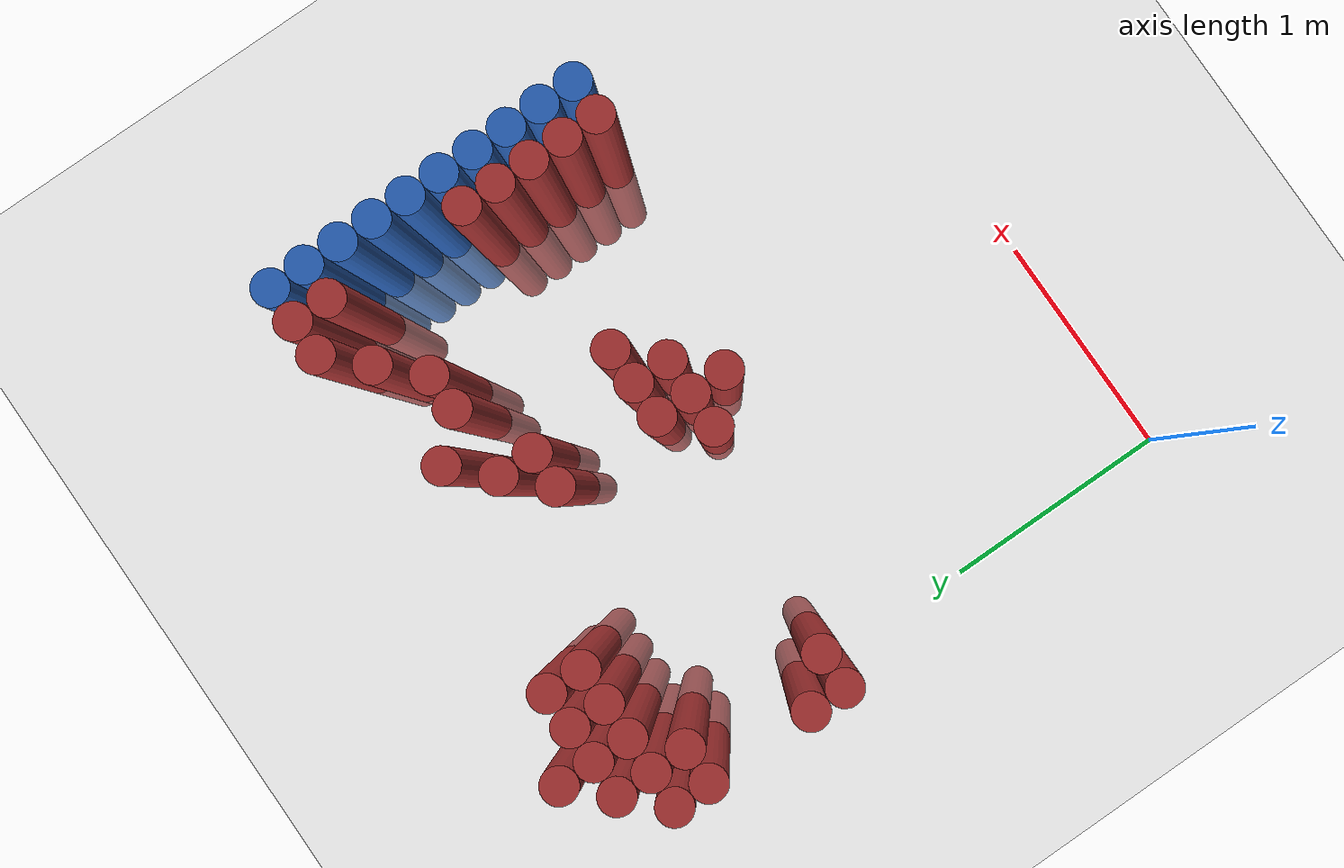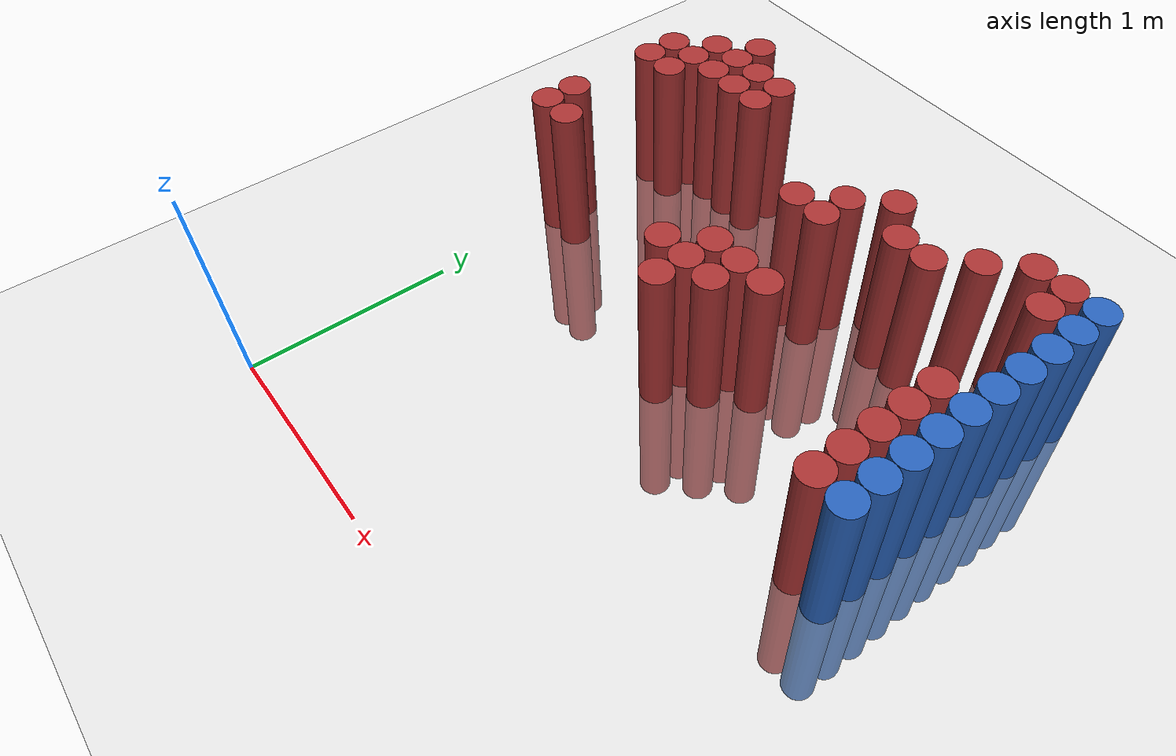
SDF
<sdf version="1.6">
 <world name="default">
  <model name="ground_plane">
   <static>1</static>
   <link name="link">
    <collision name="collision">
     <geometry><plane><normal>0 0 1</normal><size>100 100</size></plane></geometry>
     <surface><friction><ode><mu>100</mu><mu2>50</mu2></ode></friction></surface>
    </collision>
    <visual name="visual">
     <cast_shadows>0</cast_shadows>
     <geometry><plane><normal>0 0 1</normal><size>100 100</size></plane></geometry>
     <material>
      <script><uri>file://media/materials/scripts/gazebo.material</uri><name>Gazebo/Grey</name></script>
     </material>
    </visual>
   </link>
  </model>
  <model name="unit_cylinder_169">
   <static>1</static>
   <pose>0.025000 1.675000 0.000000 0.000000 0.000000 0.000000</pose>
   <link name="link">
    <inertial>
     <mass>1</mass>
     <inertia><ixx>0.145833</ixx><ixy>0</ixy><ixz>0</ixz><iyy>0.145833</iyy><iyz>0</iyz><izz>0.125</izz></inertia>
    </inertial>
    <collision name="collision">
     <geometry><cylinder><radius>0.075000</radius><length>1.5</length></cylinder></geometry>
    </collision>
    <visual name="visual">
     <geometry><cylinder><radius>0.075000</radius><length>1.5</length></cylinder></geometry>
     <material>
      <ambient>0.648000 0.192000 0.192000 1</ambient>
      <diffuse>0.648000 0.192000 0.192000 1</diffuse>
     </material>
     <material>
      <script><name>Gazebo/Grey</name><uri>file://media/materials/scripts/gazebo.material</uri></script>
     </material>
    </visual>
   </link>
  </model>
  <model name="unit_cylinder_170">
   <static>1</static>
   <pose>0.025000 1.825000 0.000000 0.000000 0.000000 0.000000</pose>
   <link name="link">
    <inertial>
     <mass>1</mass>
     <inertia><ixx>0.145833</ixx><ixy>0</ixy><ixz>0</ixz><iyy>0.145833</iyy><iyz>0</iyz><izz>0.125</izz></inertia>
    </inertial>
    <collision name="collision">
     <geometry><cylinder><radius>0.075000</radius><length>1.5</length></cylinder></geometry>
    </collision>
    <visual name="visual">
     <geometry><cylinder><radius>0.075000</radius><length>1.5</length></cylinder></geometry>
     <material>
      <ambient>0.648000 0.192000 0.192000 1</ambient>
      <diffuse>0.648000 0.192000 0.192000 1</diffuse>
     </material>
     <material>
      <script><name>Gazebo/Grey</name><uri>file://media/materials/scripts/gazebo.material</uri></script>
     </material>
    </visual>
   </link>
  </model>
  <model name="unit_cylinder_171">
   <static>1</static>
   <pose>0.025000 2.275000 0.000000 0.000000 0.000000 0.000000</pose>
   <link name="link">
    <inertial>
     <mass>1</mass>
     <inertia><ixx>0.145833</ixx><ixy>0</ixy><ixz>0</ixz><iyy>0.145833</iyy><iyz>0</iyz><izz>0.125</izz></inertia>
    </inertial>
    <collision name="collision">
     <geometry><cylinder><radius>0.075000</radius><length>1.5</length></cylinder></geometry>
    </collision>
    <visual name="visual">
     <geometry><cylinder><radius>0.075000</radius><length>1.5</length></cylinder></geometry>
     <material>
      <ambient>0.648000 0.192000 0.192000 1</ambient>
      <diffuse>0.648000 0.192000 0.192000 1</diffuse>
     </material>
     <material>
      <script><name>Gazebo/Grey</name><uri>file://media/materials/scripts/gazebo.material</uri></script>
     </material>
    </visual>
   </link>
  </model>
  <model name="unit_cylinder_172">
   <static>1</static>
   <pose>0.025000 2.425000 0.000000 0.000000 0.000000 0.000000</pose>
   <link name="link">
    <inertial>
     <mass>1</mass>
     <inertia><ixx>0.145833</ixx><ixy>0</ixy><ixz>0</ixz><iyy>0.145833</iyy><iyz>0</iyz><izz>0.125</izz></inertia>
    </inertial>
    <collision name="collision">
     <geometry><cylinder><radius>0.075000</radius><length>1.5</length></cylinder></geometry>
    </collision>
    <visual name="visual">
     <geometry><cylinder><radius>0.075000</radius><length>1.5</length></cylinder></geometry>
     <material>
      <ambient>0.648000 0.192000 0.192000 1</ambient>
      <diffuse>0.648000 0.192000 0.192000 1</diffuse>
     </material>
     <material>
      <script><name>Gazebo/Grey</name><uri>file://media/materials/scripts/gazebo.material</uri></script>
     </material>
    </visual>
   </link>
  </model>
  <model name="unit_cylinder_174">
   <static>1</static>
   <pose>0.175000 1.675000 0.000000 0.000000 0.000000 0.000000</pose>
   <link name="link">
    <inertial>
     <mass>1</mass>
     <inertia><ixx>0.145833</ixx><ixy>0</ixy><ixz>0</ixz><iyy>0.145833</iyy><iyz>0</iyz><izz>0.125</izz></inertia>
    </inertial>
    <collision name="collision">
     <geometry><cylinder><radius>0.075000</radius><length>1.5</length></cylinder></geometry>
    </collision>
    <visual name="visual">
     <geometry><cylinder><radius>0.075000</radius><length>1.5</length></cylinder></geometry>
     <material>
      <ambient>0.648000 0.192000 0.192000 1</ambient>
      <diffuse>0.648000 0.192000 0.192000 1</diffuse>
     </material>
     <material>
      <script><name>Gazebo/Grey</name><uri>file://media/materials/scripts/gazebo.material</uri></script>
     </material>
    </visual>
   </link>
  </model>
  <model name="unit_cylinder_175">
   <static>1</static>
   <pose>0.175000 2.275000 0.000000 0.000000 0.000000 0.000000</pose>
   <link name="link">
    <inertial>
     <mass>1</mass>
     <inertia><ixx>0.145833</ixx><ixy>0</ixy><ixz>0</ixz><iyy>0.145833</iyy><iyz>0</iyz><izz>0.125</izz></inertia>
    </inertial>
    <collision name="collision">
     <geometry><cylinder><radius>0.075000</radius><length>1.5</length></cylinder></geometry>
    </collision>
    <visual name="visual">
     <geometry><cylinder><radius>0.075000</radius><length>1.5</length></cylinder></geometry>
     <material>
      <ambient>0.648000 0.192000 0.192000 1</ambient>
      <diffuse>0.648000 0.192000 0.192000 1</diffuse>
     </material>
     <material>
      <script><name>Gazebo/Grey</name><uri>file://media/materials/scripts/gazebo.material</uri></script>
     </material>
    </visual>
   </link>
  </model>
  <model name="unit_cylinder_176">
   <static>1</static>
   <pose>0.175000 2.425000 0.000000 0.000000 0.000000 0.000000</pose>
   <link name="link">
    <inertial>
     <mass>1</mass>
     <inertia><ixx>0.145833</ixx><ixy>0</ixy><ixz>0</ixz><iyy>0.145833</iyy><iyz>0</iyz><izz>0.125</izz></inertia>
    </inertial>
    <collision name="collision">
     <geometry><cylinder><radius>0.075000</radius><length>1.5</length></cylinder></geometry>
    </collision>
    <visual name="visual">
     <geometry><cylinder><radius>0.075000</radius><length>1.5</length></cylinder></geometry>
     <material>
      <ambient>0.648000 0.192000 0.192000 1</ambient>
      <diffuse>0.648000 0.192000 0.192000 1</diffuse>
     </material>
     <material>
      <script><name>Gazebo/Grey</name><uri>file://media/materials/scripts/gazebo.material</uri></script>
     </material>
    </visual>
   </link>
  </model>
  <model name="unit_cylinder_177">
   <static>1</static>
   <pose>0.175000 2.575000 0.000000 0.000000 0.000000 0.000000</pose>
   <link name="link">
    <inertial>
     <mass>1</mass>
     <inertia><ixx>0.145833</ixx><ixy>0</ixy><ixz>0</ixz><iyy>0.145833</iyy><iyz>0</iyz><izz>0.125</izz></inertia>
    </inertial>
    <collision name="collision">
     <geometry><cylinder><radius>0.075000</radius><length>1.5</length></cylinder></geometry>
    </collision>
    <visual name="visual">
     <geometry><cylinder><radius>0.075000</radius><length>1.5</length></cylinder></geometry>
     <material>
      <ambient>0.648000 0.192000 0.192000 1</ambient>
      <diffuse>0.648000 0.192000 0.192000 1</diffuse>
     </material>
     <material>
      <script><name>Gazebo/Grey</name><uri>file://media/materials/scripts/gazebo.material</uri></script>
     </material>
    </visual>
   </link>
  </model>
  <model name="unit_cylinder_178">
   <static>1</static>
   <pose>0.325000 2.425000 0.000000 0.000000 0.000000 0.000000</pose>
   <link name="link">
    <inertial>
     <mass>1</mass>
     <inertia><ixx>0.145833</ixx><ixy>0</ixy><ixz>0</ixz><iyy>0.145833</iyy><iyz>0</iyz><izz>0.125</izz></inertia>
    </inertial>
    <collision name="collision">
     <geometry><cylinder><radius>0.075000</radius><length>1.5</length></cylinder></geometry>
    </collision>
    <visual name="visual">
     <geometry><cylinder><radius>0.075000</radius><length>1.5</length></cylinder></geometry>
     <material>
      <ambient>0.648000 0.192000 0.192000 1</ambient>
      <diffuse>0.648000 0.192000 0.192000 1</diffuse>
     </material>
     <material>
      <script><name>Gazebo/Grey</name><uri>file://media/materials/scripts/gazebo.material</uri></script>
     </material>
    </visual>
   </link>
  </model>
  <model name="unit_cylinder_179">
   <static>1</static>
   <pose>0.325000 2.575000 0.000000 0.000000 0.000000 0.000000</pose>
   <link name="link">
    <inertial>
     <mass>1</mass>
     <inertia><ixx>0.145833</ixx><ixy>0</ixy><ixz>0</ixz><iyy>0.145833</iyy><iyz>0</iyz><izz>0.125</izz></inertia>
    </inertial>
    <collision name="collision">
     <geometry><cylinder><radius>0.075000</radius><length>1.5</length></cylinder></geometry>
    </collision>
    <visual name="visual">
     <geometry><cylinder><radius>0.075000</radius><length>1.5</length></cylinder></geometry>
     <material>
      <ambient>0.648000 0.192000 0.192000 1</ambient>
      <diffuse>0.648000 0.192000 0.192000 1</diffuse>
     </material>
     <material>
      <script><name>Gazebo/Grey</name><uri>file://media/materials/scripts/gazebo.material</uri></script>
     </material>
    </visual>
   </link>
  </model>
  <model name="unit_cylinder_180">
   <static>1</static>
   <pose>0.325000 2.725000 0.000000 0.000000 0.000000 0.000000</pose>
   <link name="link">
    <inertial>
     <mass>1</mass>
     <inertia><ixx>0.145833</ixx><ixy>0</ixy><ixz>0</ixz><iyy>0.145833</iyy><iyz>0</iyz><izz>0.125</izz></inertia>
    </inertial>
    <collision name="collision">
     <geometry><cylinder><radius>0.075000</radius><length>1.5</length></cylinder></geometry>
    </collision>
    <visual name="visual">
     <geometry><cylinder><radius>0.075000</radius><length>1.5</length></cylinder></geometry>
     <material>
      <ambient>0.648000 0.192000 0.192000 1</ambient>
      <diffuse>0.648000 0.192000 0.192000 1</diffuse>
     </material>
     <material>
      <script><name>Gazebo/Grey</name><uri>file://media/materials/scripts/gazebo.material</uri></script>
     </material>
    </visual>
   </link>
  </model>
  <model name="unit_cylinder_182">
   <static>1</static>
   <pose>0.475000 2.425000 0.000000 0.000000 0.000000 0.000000</pose>
   <link name="link">
    <inertial>
     <mass>1</mass>
     <inertia><ixx>0.145833</ixx><ixy>0</ixy><ixz>0</ixz><iyy>0.145833</iyy><iyz>0</iyz><izz>0.125</izz></inertia>
    </inertial>
    <collision name="collision">
     <geometry><cylinder><radius>0.075000</radius><length>1.5</length></cylinder></geometry>
    </collision>
    <visual name="visual">
     <geometry><cylinder><radius>0.075000</radius><length>1.5</length></cylinder></geometry>
     <material>
      <ambient>0.648000 0.192000 0.192000 1</ambient>
      <diffuse>0.648000 0.192000 0.192000 1</diffuse>
     </material>
     <material>
      <script><name>Gazebo/Grey</name><uri>file://media/materials/scripts/gazebo.material</uri></script>
     </material>
    </visual>
   </link>
  </model>
  <model name="unit_cylinder_183">
   <static>1</static>
   <pose>0.475000 2.575000 0.000000 0.000000 0.000000 0.000000</pose>
   <link name="link">
    <inertial>
     <mass>1</mass>
     <inertia><ixx>0.145833</ixx><ixy>0</ixy><ixz>0</ixz><iyy>0.145833</iyy><iyz>0</iyz><izz>0.125</izz></inertia>
    </inertial>
    <collision name="collision">
     <geometry><cylinder><radius>0.075000</radius><length>1.5</length></cylinder></geometry>
    </collision>
    <visual name="visual">
     <geometry><cylinder><radius>0.075000</radius><length>1.5</length></cylinder></geometry>
     <material>
      <ambient>0.648000 0.192000 0.192000 1</ambient>
      <diffuse>0.648000 0.192000 0.192000 1</diffuse>
     </material>
     <material>
      <script><name>Gazebo/Grey</name><uri>file://media/materials/scripts/gazebo.material</uri></script>
     </material>
    </visual>
   </link>
  </model>
  <model name="unit_cylinder_185">
   <static>1</static>
   <pose>0.625000 2.425000 0.000000 0.000000 0.000000 0.000000</pose>
   <link name="link">
    <inertial>
     <mass>1</mass>
     <inertia><ixx>0.145833</ixx><ixy>0</ixy><ixz>0</ixz><iyy>0.145833</iyy><iyz>0</iyz><izz>0.125</izz></inertia>
    </inertial>
    <collision name="collision">
     <geometry><cylinder><radius>0.075000</radius><length>1.5</length></cylinder></geometry>
    </collision>
    <visual name="visual">
     <geometry><cylinder><radius>0.075000</radius><length>1.5</length></cylinder></geometry>
     <material>
      <ambient>0.648000 0.192000 0.192000 1</ambient>
      <diffuse>0.648000 0.192000 0.192000 1</diffuse>
     </material>
     <material>
      <script><name>Gazebo/Grey</name><uri>file://media/materials/scripts/gazebo.material</uri></script>
     </material>
    </visual>
   </link>
  </model>
  <model name="unit_cylinder_186">
   <static>1</static>
   <pose>0.625000 2.575000 0.000000 0.000000 0.000000 0.000000</pose>
   <link name="link">
    <inertial>
     <mass>1</mass>
     <inertia><ixx>0.145833</ixx><ixy>0</ixy><ixz>0</ixz><iyy>0.145833</iyy><iyz>0</iyz><izz>0.125</izz></inertia>
    </inertial>
    <collision name="collision">
     <geometry><cylinder><radius>0.075000</radius><length>1.5</length></cylinder></geometry>
    </collision>
    <visual name="visual">
     <geometry><cylinder><radius>0.075000</radius><length>1.5</length></cylinder></geometry>
     <material>
      <ambient>0.648000 0.192000 0.192000 1</ambient>
      <diffuse>0.648000 0.192000 0.192000 1</diffuse>
     </material>
     <material>
      <script><name>Gazebo/Grey</name><uri>file://media/materials/scripts/gazebo.material</uri></script>
     </material>
    </visual>
   </link>
  </model>
  <model name="unit_cylinder_190">
   <static>1</static>
   <pose>1.075000 1.525000 0.000000 0.000000 0.000000 0.000000</pose>
   <link name="link">
    <inertial>
     <mass>1</mass>
     <inertia><ixx>0.145833</ixx><ixy>0</ixy><ixz>0</ixz><iyy>0.145833</iyy><iyz>0</iyz><izz>0.125</izz></inertia>
    </inertial>
    <collision name="collision">
     <geometry><cylinder><radius>0.075000</radius><length>1.5</length></cylinder></geometry>
    </collision>
    <visual name="visual">
     <geometry><cylinder><radius>0.075000</radius><length>1.5</length></cylinder></geometry>
     <material>
      <ambient>0.648000 0.192000 0.192000 1</ambient>
      <diffuse>0.648000 0.192000 0.192000 1</diffuse>
     </material>
     <material>
      <script><name>Gazebo/Grey</name><uri>file://media/materials/scripts/gazebo.material</uri></script>
     </material>
    </visual>
   </link>
  </model>
  <model name="unit_cylinder_195">
   <static>1</static>
   <pose>1.225000 1.375000 0.000000 0.000000 0.000000 0.000000</pose>
   <link name="link">
    <inertial>
     <mass>1</mass>
     <inertia><ixx>0.145833</ixx><ixy>0</ixy><ixz>0</ixz><iyy>0.145833</iyy><iyz>0</iyz><izz>0.125</izz></inertia>
    </inertial>
    <collision name="collision">
     <geometry><cylinder><radius>0.075000</radius><length>1.5</length></cylinder></geometry>
    </collision>
    <visual name="visual">
     <geometry><cylinder><radius>0.075000</radius><length>1.5</length></cylinder></geometry>
     <material>
      <ambient>0.648000 0.192000 0.192000 1</ambient>
      <diffuse>0.648000 0.192000 0.192000 1</diffuse>
     </material>
     <material>
      <script><name>Gazebo/Grey</name><uri>file://media/materials/scripts/gazebo.material</uri></script>
     </material>
    </visual>
   </link>
  </model>
  <model name="unit_cylinder_196">
   <static>1</static>
   <pose>1.225000 1.525000 0.000000 0.000000 0.000000 0.000000</pose>
   <link name="link">
    <inertial>
     <mass>1</mass>
     <inertia><ixx>0.145833</ixx><ixy>0</ixy><ixz>0</ixz><iyy>0.145833</iyy><iyz>0</iyz><izz>0.125</izz></inertia>
    </inertial>
    <collision name="collision">
     <geometry><cylinder><radius>0.075000</radius><length>1.5</length></cylinder></geometry>
    </collision>
    <visual name="visual">
     <geometry><cylinder><radius>0.075000</radius><length>1.5</length></cylinder></geometry>
     <material>
      <ambient>0.648000 0.192000 0.192000 1</ambient>
      <diffuse>0.648000 0.192000 0.192000 1</diffuse>
     </material>
     <material>
      <script><name>Gazebo/Grey</name><uri>file://media/materials/scripts/gazebo.material</uri></script>
     </material>
    </visual>
   </link>
  </model>
  <model name="unit_cylinder_197">
   <static>1</static>
   <pose>1.225000 1.675000 0.000000 0.000000 0.000000 0.000000</pose>
   <link name="link">
    <inertial>
     <mass>1</mass>
     <inertia><ixx>0.145833</ixx><ixy>0</ixy><ixz>0</ixz><iyy>0.145833</iyy><iyz>0</iyz><izz>0.125</izz></inertia>
    </inertial>
    <collision name="collision">
     <geometry><cylinder><radius>0.075000</radius><length>1.5</length></cylinder></geometry>
    </collision>
    <visual name="visual">
     <geometry><cylinder><radius>0.075000</radius><length>1.5</length></cylinder></geometry>
     <material>
      <ambient>0.648000 0.192000 0.192000 1</ambient>
      <diffuse>0.648000 0.192000 0.192000 1</diffuse>
     </material>
     <material>
      <script><name>Gazebo/Grey</name><uri>file://media/materials/scripts/gazebo.material</uri></script>
     </material>
    </visual>
   </link>
  </model>
  <model name="unit_cylinder_198">
   <static>1</static>
   <pose>1.225000 2.125000 0.000000 0.000000 0.000000 0.000000</pose>
   <link name="link">
    <inertial>
     <mass>1</mass>
     <inertia><ixx>0.145833</ixx><ixy>0</ixy><ixz>0</ixz><iyy>0.145833</iyy><iyz>0</iyz><izz>0.125</izz></inertia>
    </inertial>
    <collision name="collision">
     <geometry><cylinder><radius>0.075000</radius><length>1.5</length></cylinder></geometry>
    </collision>
    <visual name="visual">
     <geometry><cylinder><radius>0.075000</radius><length>1.5</length></cylinder></geometry>
     <material>
      <ambient>0.648000 0.192000 0.192000 1</ambient>
      <diffuse>0.648000 0.192000 0.192000 1</diffuse>
     </material>
     <material>
      <script><name>Gazebo/Grey</name><uri>file://media/materials/scripts/gazebo.material</uri></script>
     </material>
    </visual>
   </link>
  </model>
  <model name="unit_cylinder_204">
   <static>1</static>
   <pose>1.375000 1.525000 0.000000 0.000000 0.000000 0.000000</pose>
   <link name="link">
    <inertial>
     <mass>1</mass>
     <inertia><ixx>0.145833</ixx><ixy>0</ixy><ixz>0</ixz><iyy>0.145833</iyy><iyz>0</iyz><izz>0.125</izz></inertia>
    </inertial>
    <collision name="collision">
     <geometry><cylinder><radius>0.075000</radius><length>1.5</length></cylinder></geometry>
    </collision>
    <visual name="visual">
     <geometry><cylinder><radius>0.075000</radius><length>1.5</length></cylinder></geometry>
     <material>
      <ambient>0.648000 0.192000 0.192000 1</ambient>
      <diffuse>0.648000 0.192000 0.192000 1</diffuse>
     </material>
     <material>
      <script><name>Gazebo/Grey</name><uri>file://media/materials/scripts/gazebo.material</uri></script>
     </material>
    </visual>
   </link>
  </model>
  <model name="unit_cylinder_205">
   <static>1</static>
   <pose>1.375000 1.675000 0.000000 0.000000 0.000000 0.000000</pose>
   <link name="link">
    <inertial>
     <mass>1</mass>
     <inertia><ixx>0.145833</ixx><ixy>0</ixy><ixz>0</ixz><iyy>0.145833</iyy><iyz>0</iyz><izz>0.125</izz></inertia>
    </inertial>
    <collision name="collision">
     <geometry><cylinder><radius>0.075000</radius><length>1.5</length></cylinder></geometry>
    </collision>
    <visual name="visual">
     <geometry><cylinder><radius>0.075000</radius><length>1.5</length></cylinder></geometry>
     <material>
      <ambient>0.648000 0.192000 0.192000 1</ambient>
      <diffuse>0.648000 0.192000 0.192000 1</diffuse>
     </material>
     <material>
      <script><name>Gazebo/Grey</name><uri>file://media/materials/scripts/gazebo.material</uri></script>
     </material>
    </visual>
   </link>
  </model>
  <model name="unit_cylinder_206">
   <static>1</static>
   <pose>1.375000 2.125000 0.000000 0.000000 0.000000 0.000000</pose>
   <link name="link">
    <inertial>
     <mass>1</mass>
     <inertia><ixx>0.145833</ixx><ixy>0</ixy><ixz>0</ixz><iyy>0.145833</iyy><iyz>0</iyz><izz>0.125</izz></inertia>
    </inertial>
    <collision name="collision">
     <geometry><cylinder><radius>0.075000</radius><length>1.5</length></cylinder></geometry>
    </collision>
    <visual name="visual">
     <geometry><cylinder><radius>0.075000</radius><length>1.5</length></cylinder></geometry>
     <material>
      <ambient>0.648000 0.192000 0.192000 1</ambient>
      <diffuse>0.648000 0.192000 0.192000 1</diffuse>
     </material>
     <material>
      <script><name>Gazebo/Grey</name><uri>file://media/materials/scripts/gazebo.material</uri></script>
     </material>
    </visual>
   </link>
  </model>
  <model name="unit_cylinder_207">
   <static>1</static>
   <pose>1.375000 2.275000 0.000000 0.000000 0.000000 0.000000</pose>
   <link name="link">
    <inertial>
     <mass>1</mass>
     <inertia><ixx>0.145833</ixx><ixy>0</ixy><ixz>0</ixz><iyy>0.145833</iyy><iyz>0</iyz><izz>0.125</izz></inertia>
    </inertial>
    <collision name="collision">
     <geometry><cylinder><radius>0.075000</radius><length>1.5</length></cylinder></geometry>
    </collision>
    <visual name="visual">
     <geometry><cylinder><radius>0.075000</radius><length>1.5</length></cylinder></geometry>
     <material>
      <ambient>0.648000 0.192000 0.192000 1</ambient>
      <diffuse>0.648000 0.192000 0.192000 1</diffuse>
     </material>
     <material>
      <script><name>Gazebo/Grey</name><uri>file://media/materials/scripts/gazebo.material</uri></script>
     </material>
    </visual>
   </link>
  </model>
  <model name="unit_cylinder_209">
   <static>1</static>
   <pose>1.525000 1.675000 0.000000 0.000000 0.000000 0.000000</pose>
   <link name="link">
    <inertial>
     <mass>1</mass>
     <inertia><ixx>0.145833</ixx><ixy>0</ixy><ixz>0</ixz><iyy>0.145833</iyy><iyz>0</iyz><izz>0.125</izz></inertia>
    </inertial>
    <collision name="collision">
     <geometry><cylinder><radius>0.075000</radius><length>1.5</length></cylinder></geometry>
    </collision>
    <visual name="visual">
     <geometry><cylinder><radius>0.075000</radius><length>1.5</length></cylinder></geometry>
     <material>
      <ambient>0.648000 0.192000 0.192000 1</ambient>
      <diffuse>0.648000 0.192000 0.192000 1</diffuse>
     </material>
     <material>
      <script><name>Gazebo/Grey</name><uri>file://media/materials/scripts/gazebo.material</uri></script>
     </material>
    </visual>
   </link>
  </model>
  <model name="unit_cylinder_210">
   <static>1</static>
   <pose>1.525000 2.425000 0.000000 0.000000 0.000000 0.000000</pose>
   <link name="link">
    <inertial>
     <mass>1</mass>
     <inertia><ixx>0.145833</ixx><ixy>0</ixy><ixz>0</ixz><iyy>0.145833</iyy><iyz>0</iyz><izz>0.125</izz></inertia>
    </inertial>
    <collision name="collision">
     <geometry><cylinder><radius>0.075000</radius><length>1.5</length></cylinder></geometry>
    </collision>
    <visual name="visual">
     <geometry><cylinder><radius>0.075000</radius><length>1.5</length></cylinder></geometry>
     <material>
      <ambient>0.648000 0.192000 0.192000 1</ambient>
      <diffuse>0.648000 0.192000 0.192000 1</diffuse>
     </material>
     <material>
      <script><name>Gazebo/Grey</name><uri>file://media/materials/scripts/gazebo.material</uri></script>
     </material>
    </visual>
   </link>
  </model>
  <model name="unit_cylinder_211">
   <static>1</static>
   <pose>1.675000 2.275000 0.000000 0.000000 0.000000 0.000000</pose>
   <link name="link">
    <inertial>
     <mass>1</mass>
     <inertia><ixx>0.145833</ixx><ixy>0</ixy><ixz>0</ixz><iyy>0.145833</iyy><iyz>0</iyz><izz>0.125</izz></inertia>
    </inertial>
    <collision name="collision">
     <geometry><cylinder><radius>0.075000</radius><length>1.5</length></cylinder></geometry>
    </collision>
    <visual name="visual">
     <geometry><cylinder><radius>0.075000</radius><length>1.5</length></cylinder></geometry>
     <material>
      <ambient>0.648000 0.192000 0.192000 1</ambient>
      <diffuse>0.648000 0.192000 0.192000 1</diffuse>
     </material>
     <material>
      <script><name>Gazebo/Grey</name><uri>file://media/materials/scripts/gazebo.material</uri></script>
     </material>
    </visual>
   </link>
  </model>
  <model name="unit_cylinder_212">
   <static>1</static>
   <pose>1.825000 2.275000 0.000000 0.000000 0.000000 0.000000</pose>
   <link name="link">
    <inertial>
     <mass>1</mass>
     <inertia><ixx>0.145833</ixx><ixy>0</ixy><ixz>0</ixz><iyy>0.145833</iyy><iyz>0</iyz><izz>0.125</izz></inertia>
    </inertial>
    <collision name="collision">
     <geometry><cylinder><radius>0.075000</radius><length>1.5</length></cylinder></geometry>
    </collision>
    <visual name="visual">
     <geometry><cylinder><radius>0.075000</radius><length>1.5</length></cylinder></geometry>
     <material>
      <ambient>0.648000 0.192000 0.192000 1</ambient>
      <diffuse>0.648000 0.192000 0.192000 1</diffuse>
     </material>
     <material>
      <script><name>Gazebo/Grey</name><uri>file://media/materials/scripts/gazebo.material</uri></script>
     </material>
    </visual>
   </link>
  </model>
  <model name="unit_cylinder_216">
   <static>1</static>
   <pose>1.975000 2.425000 0.000000 0.000000 0.000000 0.000000</pose>
   <link name="link">
    <inertial>
     <mass>1</mass>
     <inertia><ixx>0.145833</ixx><ixy>0</ixy><ixz>0</ixz><iyy>0.145833</iyy><iyz>0</iyz><izz>0.125</izz></inertia>
    </inertial>
    <collision name="collision">
     <geometry><cylinder><radius>0.075000</radius><length>1.5</length></cylinder></geometry>
    </collision>
    <visual name="visual">
     <geometry><cylinder><radius>0.075000</radius><length>1.5</length></cylinder></geometry>
     <material>
      <ambient>0.648000 0.192000 0.192000 1</ambient>
      <diffuse>0.648000 0.192000 0.192000 1</diffuse>
     </material>
     <material>
      <script><name>Gazebo/Grey</name><uri>file://media/materials/scripts/gazebo.material</uri></script>
     </material>
    </visual>
   </link>
  </model>
  <model name="unit_cylinder_225">
   <static>1</static>
   <pose>2.125000 2.575000 0.000000 0.000000 0.000000 0.000000</pose>
   <link name="link">
    <inertial>
     <mass>1</mass>
     <inertia><ixx>0.145833</ixx><ixy>0</ixy><ixz>0</ixz><iyy>0.145833</iyy><iyz>0</iyz><izz>0.125</izz></inertia>
    </inertial>
    <collision name="collision">
     <geometry><cylinder><radius>0.075000</radius><length>1.5</length></cylinder></geometry>
    </collision>
    <visual name="visual">
     <geometry><cylinder><radius>0.075000</radius><length>1.5</length></cylinder></geometry>
     <material>
      <ambient>0.648000 0.192000 0.192000 1</ambient>
      <diffuse>0.648000 0.192000 0.192000 1</diffuse>
     </material>
     <material>
      <script><name>Gazebo/Grey</name><uri>file://media/materials/scripts/gazebo.material</uri></script>
     </material>
    </visual>
   </link>
  </model>
  <model name="unit_cylinder_235">
   <static>1</static>
   <pose>2.275000 1.225000 0.000000 0.000000 0.000000 0.000000</pose>
   <link name="link">
    <inertial>
     <mass>1</mass>
     <inertia><ixx>0.145833</ixx><ixy>0</ixy><ixz>0</ixz><iyy>0.145833</iyy><iyz>0</iyz><izz>0.125</izz></inertia>
    </inertial>
    <collision name="collision">
     <geometry><cylinder><radius>0.075000</radius><length>1.5</length></cylinder></geometry>
    </collision>
    <visual name="visual">
     <geometry><cylinder><radius>0.075000</radius><length>1.5</length></cylinder></geometry>
     <material>
      <ambient>0.648000 0.192000 0.192000 1</ambient>
      <diffuse>0.648000 0.192000 0.192000 1</diffuse>
     </material>
     <material>
      <script><name>Gazebo/Grey</name><uri>file://media/materials/scripts/gazebo.material</uri></script>
     </material>
    </visual>
   </link>
  </model>
  <model name="unit_cylinder_236">
   <static>1</static>
   <pose>2.275000 1.375000 0.000000 0.000000 0.000000 0.000000</pose>
   <link name="link">
    <inertial>
     <mass>1</mass>
     <inertia><ixx>0.145833</ixx><ixy>0</ixy><ixz>0</ixz><iyy>0.145833</iyy><iyz>0</iyz><izz>0.125</izz></inertia>
    </inertial>
    <collision name="collision">
     <geometry><cylinder><radius>0.075000</radius><length>1.5</length></cylinder></geometry>
    </collision>
    <visual name="visual">
     <geometry><cylinder><radius>0.075000</radius><length>1.5</length></cylinder></geometry>
     <material>
      <ambient>0.648000 0.192000 0.192000 1</ambient>
      <diffuse>0.648000 0.192000 0.192000 1</diffuse>
     </material>
     <material>
      <script><name>Gazebo/Grey</name><uri>file://media/materials/scripts/gazebo.material</uri></script>
     </material>
    </visual>
   </link>
  </model>
  <model name="unit_cylinder_237">
   <static>1</static>
   <pose>2.275000 1.525000 0.000000 0.000000 0.000000 0.000000</pose>
   <link name="link">
    <inertial>
     <mass>1</mass>
     <inertia><ixx>0.145833</ixx><ixy>0</ixy><ixz>0</ixz><iyy>0.145833</iyy><iyz>0</iyz><izz>0.125</izz></inertia>
    </inertial>
    <collision name="collision">
     <geometry><cylinder><radius>0.075000</radius><length>1.5</length></cylinder></geometry>
    </collision>
    <visual name="visual">
     <geometry><cylinder><radius>0.075000</radius><length>1.5</length></cylinder></geometry>
     <material>
      <ambient>0.648000 0.192000 0.192000 1</ambient>
      <diffuse>0.648000 0.192000 0.192000 1</diffuse>
     </material>
     <material>
      <script><name>Gazebo/Grey</name><uri>file://media/materials/scripts/gazebo.material</uri></script>
     </material>
    </visual>
   </link>
  </model>
  <model name="unit_cylinder_238">
   <static>1</static>
   <pose>2.275000 1.675000 0.000000 0.000000 0.000000 0.000000</pose>
   <link name="link">
    <inertial>
     <mass>1</mass>
     <inertia><ixx>0.145833</ixx><ixy>0</ixy><ixz>0</ixz><iyy>0.145833</iyy><iyz>0</iyz><izz>0.125</izz></inertia>
    </inertial>
    <collision name="collision">
     <geometry><cylinder><radius>0.075000</radius><length>1.5</length></cylinder></geometry>
    </collision>
    <visual name="visual">
     <geometry><cylinder><radius>0.075000</radius><length>1.5</length></cylinder></geometry>
     <material>
      <ambient>0.648000 0.192000 0.192000 1</ambient>
      <diffuse>0.648000 0.192000 0.192000 1</diffuse>
     </material>
     <material>
      <script><name>Gazebo/Grey</name><uri>file://media/materials/scripts/gazebo.material</uri></script>
     </material>
    </visual>
   </link>
  </model>
  <model name="unit_cylinder_239">
   <static>1</static>
   <pose>2.275000 1.825000 0.000000 0.000000 0.000000 0.000000</pose>
   <link name="link">
    <inertial>
     <mass>1</mass>
     <inertia><ixx>0.145833</ixx><ixy>0</ixy><ixz>0</ixz><iyy>0.145833</iyy><iyz>0</iyz><izz>0.125</izz></inertia>
    </inertial>
    <collision name="collision">
     <geometry><cylinder><radius>0.075000</radius><length>1.5</length></cylinder></geometry>
    </collision>
    <visual name="visual">
     <geometry><cylinder><radius>0.075000</radius><length>1.5</length></cylinder></geometry>
     <material>
      <ambient>0.648000 0.192000 0.192000 1</ambient>
      <diffuse>0.648000 0.192000 0.192000 1</diffuse>
     </material>
     <material>
      <script><name>Gazebo/Grey</name><uri>file://media/materials/scripts/gazebo.material</uri></script>
     </material>
    </visual>
   </link>
  </model>
  <model name="unit_cylinder_240">
   <static>1</static>
   <pose>2.275000 2.425000 0.000000 0.000000 0.000000 0.000000</pose>
   <link name="link">
    <inertial>
     <mass>1</mass>
     <inertia><ixx>0.145833</ixx><ixy>0</ixy><ixz>0</ixz><iyy>0.145833</iyy><iyz>0</iyz><izz>0.125</izz></inertia>
    </inertial>
    <collision name="collision">
     <geometry><cylinder><radius>0.075000</radius><length>1.5</length></cylinder></geometry>
    </collision>
    <visual name="visual">
     <geometry><cylinder><radius>0.075000</radius><length>1.5</length></cylinder></geometry>
     <material>
      <ambient>0.648000 0.192000 0.192000 1</ambient>
      <diffuse>0.648000 0.192000 0.192000 1</diffuse>
     </material>
     <material>
      <script><name>Gazebo/Grey</name><uri>file://media/materials/scripts/gazebo.material</uri></script>
     </material>
    </visual>
   </link>
  </model>
  <model name="unit_cylinder_241">
   <static>1</static>
   <pose>2.275000 2.575000 0.000000 0.000000 0.000000 0.000000</pose>
   <link name="link">
    <inertial>
     <mass>1</mass>
     <inertia><ixx>0.145833</ixx><ixy>0</ixy><ixz>0</ixz><iyy>0.145833</iyy><iyz>0</iyz><izz>0.125</izz></inertia>
    </inertial>
    <collision name="collision">
     <geometry><cylinder><radius>0.075000</radius><length>1.5</length></cylinder></geometry>
    </collision>
    <visual name="visual">
     <geometry><cylinder><radius>0.075000</radius><length>1.5</length></cylinder></geometry>
     <material>
      <ambient>0.648000 0.192000 0.192000 1</ambient>
      <diffuse>0.648000 0.192000 0.192000 1</diffuse>
     </material>
     <material>
      <script><name>Gazebo/Grey</name><uri>file://media/materials/scripts/gazebo.material</uri></script>
     </material>
    </visual>
   </link>
  </model>
  <model name="unit_cylinder_259">
   <static>1</static>
   <pose>2.425000 1.225000 0.000000 0.000000 0.000000 0.000000</pose>
   <link name="link">
    <inertial>
     <mass>1</mass>
     <inertia><ixx>0.145833</ixx><ixy>0</ixy><ixz>0</ixz><iyy>0.145833</iyy><iyz>0</iyz><izz>0.125</izz></inertia>
    </inertial>
    <collision name="collision">
     <geometry><cylinder><radius>0.075000</radius><length>1.5</length></cylinder></geometry>
    </collision>
    <visual name="visual">
     <geometry><cylinder><radius>0.075000</radius><length>1.5</length></cylinder></geometry>
     <material>
      <ambient>0.152000 0.379000 0.720000 1</ambient>
      <diffuse>0.152000 0.379000 0.720000 1</diffuse>
     </material>
     <material>
      <script><name>Gazebo/Grey</name><uri>file://media/materials/scripts/gazebo.material</uri></script>
     </material>
    </visual>
   </link>
  </model>
  <model name="unit_cylinder_260">
   <static>1</static>
   <pose>2.425000 1.375000 0.000000 0.000000 0.000000 0.000000</pose>
   <link name="link">
    <inertial>
     <mass>1</mass>
     <inertia><ixx>0.145833</ixx><ixy>0</ixy><ixz>0</ixz><iyy>0.145833</iyy><iyz>0</iyz><izz>0.125</izz></inertia>
    </inertial>
    <collision name="collision">
     <geometry><cylinder><radius>0.075000</radius><length>1.5</length></cylinder></geometry>
    </collision>
    <visual name="visual">
     <geometry><cylinder><radius>0.075000</radius><length>1.5</length></cylinder></geometry>
     <material>
      <ambient>0.152000 0.379000 0.720000 1</ambient>
      <diffuse>0.152000 0.379000 0.720000 1</diffuse>
     </material>
     <material>
      <script><name>Gazebo/Grey</name><uri>file://media/materials/scripts/gazebo.material</uri></script>
     </material>
    </visual>
   </link>
  </model>
  <model name="unit_cylinder_261">
   <static>1</static>
   <pose>2.425000 1.525000 0.000000 0.000000 0.000000 0.000000</pose>
   <link name="link">
    <inertial>
     <mass>1</mass>
     <inertia><ixx>0.145833</ixx><ixy>0</ixy><ixz>0</ixz><iyy>0.145833</iyy><iyz>0</iyz><izz>0.125</izz></inertia>
    </inertial>
    <collision name="collision">
     <geometry><cylinder><radius>0.075000</radius><length>1.5</length></cylinder></geometry>
    </collision>
    <visual name="visual">
     <geometry><cylinder><radius>0.075000</radius><length>1.5</length></cylinder></geometry>
     <material>
      <ambient>0.152000 0.379000 0.720000 1</ambient>
      <diffuse>0.152000 0.379000 0.720000 1</diffuse>
     </material>
     <material>
      <script><name>Gazebo/Grey</name><uri>file://media/materials/scripts/gazebo.material</uri></script>
     </material>
    </visual>
   </link>
  </model>
  <model name="unit_cylinder_262">
   <static>1</static>
   <pose>2.425000 1.675000 0.000000 0.000000 0.000000 0.000000</pose>
   <link name="link">
    <inertial>
     <mass>1</mass>
     <inertia><ixx>0.145833</ixx><ixy>0</ixy><ixz>0</ixz><iyy>0.145833</iyy><iyz>0</iyz><izz>0.125</izz></inertia>
    </inertial>
    <collision name="collision">
     <geometry><cylinder><radius>0.075000</radius><length>1.5</length></cylinder></geometry>
    </collision>
    <visual name="visual">
     <geometry><cylinder><radius>0.075000</radius><length>1.5</length></cylinder></geometry>
     <material>
      <ambient>0.152000 0.379000 0.720000 1</ambient>
      <diffuse>0.152000 0.379000 0.720000 1</diffuse>
     </material>
     <material>
      <script><name>Gazebo/Grey</name><uri>file://media/materials/scripts/gazebo.material</uri></script>
     </material>
    </visual>
   </link>
  </model>
  <model name="unit_cylinder_263">
   <static>1</static>
   <pose>2.425000 1.825000 0.000000 0.000000 0.000000 0.000000</pose>
   <link name="link">
    <inertial>
     <mass>1</mass>
     <inertia><ixx>0.145833</ixx><ixy>0</ixy><ixz>0</ixz><iyy>0.145833</iyy><iyz>0</iyz><izz>0.125</izz></inertia>
    </inertial>
    <collision name="collision">
     <geometry><cylinder><radius>0.075000</radius><length>1.5</length></cylinder></geometry>
    </collision>
    <visual name="visual">
     <geometry><cylinder><radius>0.075000</radius><length>1.5</length></cylinder></geometry>
     <material>
      <ambient>0.152000 0.379000 0.720000 1</ambient>
      <diffuse>0.152000 0.379000 0.720000 1</diffuse>
     </material>
     <material>
      <script><name>Gazebo/Grey</name><uri>file://media/materials/scripts/gazebo.material</uri></script>
     </material>
    </visual>
   </link>
  </model>
  <model name="unit_cylinder_264">
   <static>1</static>
   <pose>2.425000 1.975000 0.000000 0.000000 0.000000 0.000000</pose>
   <link name="link">
    <inertial>
     <mass>1</mass>
     <inertia><ixx>0.145833</ixx><ixy>0</ixy><ixz>0</ixz><iyy>0.145833</iyy><iyz>0</iyz><izz>0.125</izz></inertia>
    </inertial>
    <collision name="collision">
     <geometry><cylinder><radius>0.075000</radius><length>1.5</length></cylinder></geometry>
    </collision>
    <visual name="visual">
     <geometry><cylinder><radius>0.075000</radius><length>1.5</length></cylinder></geometry>
     <material>
      <ambient>0.152000 0.379000 0.720000 1</ambient>
      <diffuse>0.152000 0.379000 0.720000 1</diffuse>
     </material>
     <material>
      <script><name>Gazebo/Grey</name><uri>file://media/materials/scripts/gazebo.material</uri></script>
     </material>
    </visual>
   </link>
  </model>
  <model name="unit_cylinder_265">
   <static>1</static>
   <pose>2.425000 2.125000 0.000000 0.000000 0.000000 0.000000</pose>
   <link name="link">
    <inertial>
     <mass>1</mass>
     <inertia><ixx>0.145833</ixx><ixy>0</ixy><ixz>0</ixz><iyy>0.145833</iyy><iyz>0</iyz><izz>0.125</izz></inertia>
    </inertial>
    <collision name="collision">
     <geometry><cylinder><radius>0.075000</radius><length>1.5</length></cylinder></geometry>
    </collision>
    <visual name="visual">
     <geometry><cylinder><radius>0.075000</radius><length>1.5</length></cylinder></geometry>
     <material>
      <ambient>0.152000 0.379000 0.720000 1</ambient>
      <diffuse>0.152000 0.379000 0.720000 1</diffuse>
     </material>
     <material>
      <script><name>Gazebo/Grey</name><uri>file://media/materials/scripts/gazebo.material</uri></script>
     </material>
    </visual>
   </link>
  </model>
  <model name="unit_cylinder_266">
   <static>1</static>
   <pose>2.425000 2.275000 0.000000 0.000000 0.000000 0.000000</pose>
   <link name="link">
    <inertial>
     <mass>1</mass>
     <inertia><ixx>0.145833</ixx><ixy>0</ixy><ixz>0</ixz><iyy>0.145833</iyy><iyz>0</iyz><izz>0.125</izz></inertia>
    </inertial>
    <collision name="collision">
     <geometry><cylinder><radius>0.075000</radius><length>1.5</length></cylinder></geometry>
    </collision>
    <visual name="visual">
     <geometry><cylinder><radius>0.075000</radius><length>1.5</length></cylinder></geometry>
     <material>
      <ambient>0.152000 0.379000 0.720000 1</ambient>
      <diffuse>0.152000 0.379000 0.720000 1</diffuse>
     </material>
     <material>
      <script><name>Gazebo/Grey</name><uri>file://media/materials/scripts/gazebo.material</uri></script>
     </material>
    </visual>
   </link>
  </model>
  <model name="unit_cylinder_267">
   <static>1</static>
   <pose>2.425000 2.425000 0.000000 0.000000 0.000000 0.000000</pose>
   <link name="link">
    <inertial>
     <mass>1</mass>
     <inertia><ixx>0.145833</ixx><ixy>0</ixy><ixz>0</ixz><iyy>0.145833</iyy><iyz>0</iyz><izz>0.125</izz></inertia>
    </inertial>
    <collision name="collision">
     <geometry><cylinder><radius>0.075000</radius><length>1.5</length></cylinder></geometry>
    </collision>
    <visual name="visual">
     <geometry><cylinder><radius>0.075000</radius><length>1.5</length></cylinder></geometry>
     <material>
      <ambient>0.152000 0.379000 0.720000 1</ambient>
      <diffuse>0.152000 0.379000 0.720000 1</diffuse>
     </material>
     <material>
      <script><name>Gazebo/Grey</name><uri>file://media/materials/scripts/gazebo.material</uri></script>
     </material>
    </visual>
   </link>
  </model>
  <model name="unit_cylinder_268">
   <static>1</static>
   <pose>2.425000 2.575000 0.000000 0.000000 0.000000 0.000000</pose>
   <link name="link">
    <inertial>
     <mass>1</mass>
     <inertia><ixx>0.145833</ixx><ixy>0</ixy><ixz>0</ixz><iyy>0.145833</iyy><iyz>0</iyz><izz>0.125</izz></inertia>
    </inertial>
    <collision name="collision">
     <geometry><cylinder><radius>0.075000</radius><length>1.5</length></cylinder></geometry>
    </collision>
    <visual name="visual">
     <geometry><cylinder><radius>0.075000</radius><length>1.5</length></cylinder></geometry>
     <material>
      <ambient>0.152000 0.379000 0.720000 1</ambient>
      <diffuse>0.152000 0.379000 0.720000 1</diffuse>
     </material>
     <material>
      <script><name>Gazebo/Grey</name><uri>file://media/materials/scripts/gazebo.material</uri></script>
     </material>
    </visual>
   </link>
  </model>
 </world>
</sdf>
